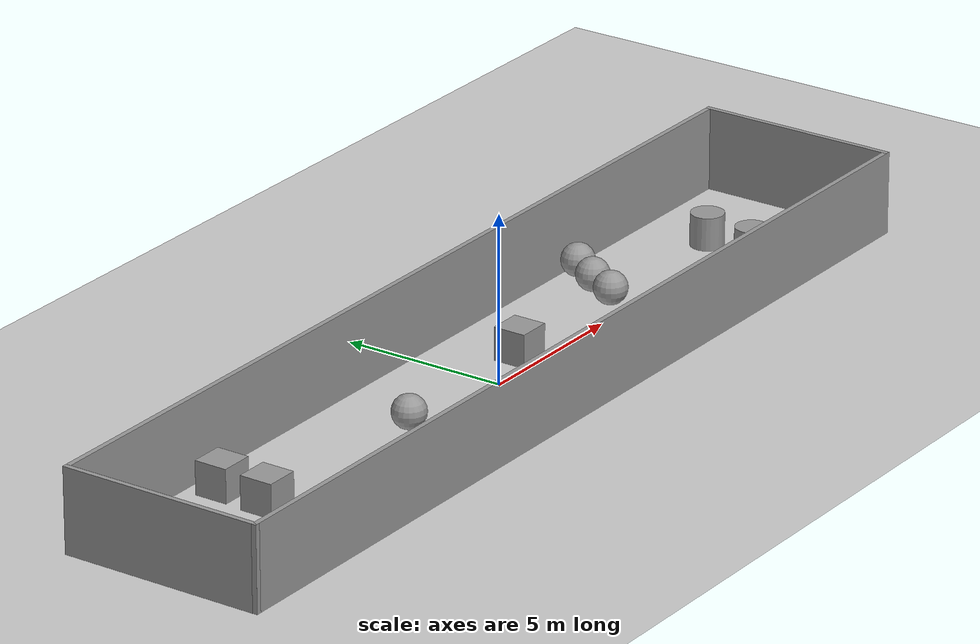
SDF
<sdf version="1.6">
 <world name="default">
  <light name="sun" type="directional">
   <pose>0 0 10 0 -0 0</pose>
   <diffuse>0.8 0.8 0.8 1</diffuse>
   <specular>0.2 0.2 0.2 1</specular>
   <attenuation>
    <range>1000</range>
    <constant>0.9</constant>
    <linear>0.01</linear>
    <quadratic>0.001</quadratic>
   </attenuation>
   <direction>-0.5 0.1 -0.9</direction>
  </light>
  <model name="ground_plane">
   <static>1</static>
   <link name="link">
    <collision name="collision">
     <geometry><plane><normal>0 0 1</normal><size>100 100</size></plane></geometry>
     <surface>
      <contact><collide_bitmask>65535</collide_bitmask></contact>
      <friction><ode><mu>100</mu><mu2>50</mu2></ode></friction>
     </surface>
    </collision>
    <visual name="visual">
     <cast_shadows>0</cast_shadows>
     <geometry><plane><normal>0 0 1</normal><size>100 100</size></plane></geometry>
     <material>
      <script><uri>file://media/materials/scripts/gazebo.material</uri><name>Gazebo/Grey</name></script>
     </material>
    </visual>
   </link>
  </model>
  <gravity>0 0 -9.8</gravity>
  <magnetic_field>6e-06 2.3e-05 -4.2e-05</magnetic_field>
  <atmosphere type="adiabatic"/>
  <physics name="default_physics" default="0" type="ode">
   <max_step_size>0.001</max_step_size>
   <real_time_factor>1</real_time_factor>
   <real_time_update_rate>1000</real_time_update_rate>
  </physics>
  <scene><ambient>0.4 0.4 0.4 1</ambient><background>0.7 0.7 0.7 1</background><shadows>1</shadows></scene>
  <audio><device>default</device></audio>
  <spherical_coordinates>
   <surface_model>EARTH_WGS84</surface_model>
   <latitude_deg>0</latitude_deg>
   <longitude_deg>0</longitude_deg>
   <elevation>0</elevation>
   <heading_deg>0</heading_deg>
  </spherical_coordinates>
  <model name="hallway.sdf">
   <link name="Wall_0">
    <collision name="Wall_0_Collision">
     <geometry><box><size>30.15 0.15 2.5</size></box></geometry>
     <pose>0 0 1.25 0 -0 0</pose>
    </collision>
    <visual name="Wall_0_Visual">
     <pose>0 0 1.25 0 -0 0</pose>
     <geometry><box><size>30.15 0.15 2.5</size></box></geometry>
     <material>
      <script><uri>file://media/materials/scripts/gazebo.material</uri><name>Gazebo/Grey</name></script>
      <ambient>1 1 1 1</ambient>
     </material>
     <meta><layer>0</layer></meta>
    </visual>
    <pose>0 3 0 0 -0 0</pose>
   </link>
   <link name="Wall_1">
    <collision name="Wall_1_Collision">
     <geometry><box><size>6.15 0.15 2.5</size></box></geometry>
     <pose>0 0 1.25 0 -0 0</pose>
    </collision>
    <visual name="Wall_1_Visual">
     <pose>0 0 1.25 0 -0 0</pose>
     <geometry><box><size>6.15 0.15 2.5</size></box></geometry>
     <material>
      <script><uri>file://media/materials/scripts/gazebo.material</uri><name>Gazebo/Grey</name></script>
      <ambient>1 1 1 1</ambient>
     </material>
     <meta><layer>0</layer></meta>
    </visual>
    <pose>15 0 0 0 -0 -1.5708</pose>
   </link>
   <link name="Wall_2">
    <collision name="Wall_2_Collision">
     <geometry><box><size>30.15 0.15 2.5</size></box></geometry>
     <pose>0 0 1.25 0 -0 0</pose>
    </collision>
    <visual name="Wall_2_Visual">
     <pose>0 0 1.25 0 -0 0</pose>
     <geometry><box><size>30.15 0.15 2.5</size></box></geometry>
     <material>
      <script><uri>file://media/materials/scripts/gazebo.material</uri><name>Gazebo/Grey</name></script>
      <ambient>1 1 1 1</ambient>
     </material>
     <meta><layer>0</layer></meta>
    </visual>
    <pose>0 -3 0 0 -0 3.14159</pose>
   </link>
   <link name="Wall_3">
    <collision name="Wall_3_Collision">
     <geometry><box><size>6.15 0.15 2.5</size></box></geometry>
     <pose>0 0 1.25 0 -0 0</pose>
    </collision>
    <visual name="Wall_3_Visual">
     <pose>0 0 1.25 0 -0 0</pose>
     <geometry><box><size>6.15 0.15 2.5</size></box></geometry>
     <material>
      <script><uri>file://media/materials/scripts/gazebo.material</uri><name>Gazebo/Grey</name></script>
      <ambient>1 1 1 1</ambient>
     </material>
     <meta><layer>0</layer></meta>
    </visual>
    <pose>-15 0 0 0 -0 1.5708</pose>
   </link>
   <static>1</static>
  </model>
  <model name="hall_obstacles.sdf">
   <link name="link_0">
    <inertial>
     <mass>2000</mass>
     <inertia><ixx>333.333</ixx><ixy>0</ixy><ixz>0</ixz><iyy>333.333</iyy><iyz>0</iyz><izz>333.333</izz></inertia>
    </inertial>
    <pose>-12.2076 1.1435 0 0 -0 0</pose>
    <visual name="visual">
     <geometry><box><size>1 1 1</size></box></geometry>
     <material>
      <lighting>1</lighting>
      <script><uri>file://media/materials/scripts/gazebo.material</uri><name>Gazebo/Grey</name></script>
      <shader type="vertex"><normal_map>__default__</normal_map></shader>
     </material>
    </visual>
    <collision name="collision">
     <geometry><box><size>1 1 1</size></box></geometry>
     <surface>
      <friction>
       <ode><mu>1</mu><mu2>1</mu2><fdir1>0 0 0</fdir1><slip1>0</slip1><slip2>0</slip2></ode>
       <torsional>
        <coefficient>1</coefficient>
        <patch_radius>0</patch_radius>
        <surface_radius>0</surface_radius>
        <use_patch_radius>1</use_patch_radius>
        <ode><slip>0</slip></ode>
       </torsional>
      </friction>
      <bounce><restitution_coefficient>0</restitution_coefficient><threshold>1e+06</threshold></bounce>
      <contact>
       <collide_without_contact>0</collide_without_contact>
       <collide_without_contact_bitmask>1</collide_without_contact_bitmask>
       <collide_bitmask>1</collide_bitmask>
       <ode>
        <soft_cfm>0</soft_cfm>
        <soft_erp>0.2</soft_erp>
        <kp>1e+13</kp>
        <kd>1</kd>
        <max_vel>0.01</max_vel>
        <min_depth>0</min_depth>
       </ode>
       <bullet>
        <split_impulse>1</split_impulse>
        <split_impulse_penetration_threshold>-0.01</split_impulse_penetration_threshold>
        <soft_cfm>0</soft_cfm>
        <soft_erp>0.2</soft_erp>
        <kp>1e+13</kp>
        <kd>1</kd>
       </bullet>
      </contact>
     </surface>
    </collision>
   </link>
   <link name="link_1">
    <inertial>
     <mass>2000</mass>
     <inertia><ixx>333.333</ixx><ixy>0</ixy><ixz>0</ixz><iyy>333.333</iyy><iyz>0</iyz><izz>333.333</izz></inertia>
    </inertial>
    <pose>-12.2761 -0.378192 0 0 -0 0</pose>
    <visual name="visual">
     <geometry><box><size>1 1 1</size></box></geometry>
     <material>
      <lighting>1</lighting>
      <script><uri>file://media/materials/scripts/gazebo.material</uri><name>Gazebo/Grey</name></script>
      <shader type="vertex"><normal_map>__default__</normal_map></shader>
     </material>
    </visual>
    <collision name="collision">
     <geometry><box><size>1 1 1</size></box></geometry>
     <surface>
      <friction>
       <ode><mu>1</mu><mu2>1</mu2><fdir1>0 0 0</fdir1><slip1>0</slip1><slip2>0</slip2></ode>
       <torsional>
        <coefficient>1</coefficient>
        <patch_radius>0</patch_radius>
        <surface_radius>0</surface_radius>
        <use_patch_radius>1</use_patch_radius>
        <ode><slip>0</slip></ode>
       </torsional>
      </friction>
      <bounce><restitution_coefficient>0</restitution_coefficient><threshold>1e+06</threshold></bounce>
      <contact>
       <collide_without_contact>0</collide_without_contact>
       <collide_without_contact_bitmask>1</collide_without_contact_bitmask>
       <collide_bitmask>1</collide_bitmask>
       <ode>
        <soft_cfm>0</soft_cfm>
        <soft_erp>0.2</soft_erp>
        <kp>1e+13</kp>
        <kd>1</kd>
        <max_vel>0.01</max_vel>
        <min_depth>0</min_depth>
       </ode>
       <bullet>
        <split_impulse>1</split_impulse>
        <split_impulse_penetration_threshold>-0.01</split_impulse_penetration_threshold>
        <soft_cfm>0</soft_cfm>
        <soft_erp>0.2</soft_erp>
        <kp>1e+13</kp>
        <kd>1</kd>
       </bullet>
      </contact>
     </surface>
    </collision>
   </link>
   <link name="link_2">
    <inertial>
     <mass>2000</mass>
     <inertia><ixx>333.333</ixx><ixy>0</ixy><ixz>0</ixz><iyy>333.333</iyy><iyz>0</iyz><izz>333.333</izz></inertia>
    </inertial>
    <pose>-0.635519 -0.315968 0 0 -0 0</pose>
    <visual name="visual">
     <geometry><box><size>1 1 1</size></box></geometry>
     <material>
      <lighting>1</lighting>
      <script><uri>file://media/materials/scripts/gazebo.material</uri><name>Gazebo/Grey</name></script>
      <shader type="vertex"><normal_map>__default__</normal_map></shader>
     </material>
    </visual>
    <collision name="collision">
     <geometry><box><size>1 1 1</size></box></geometry>
     <surface>
      <friction>
       <ode><mu>1</mu><mu2>1</mu2><fdir1>0 0 0</fdir1><slip1>0</slip1><slip2>0</slip2></ode>
       <torsional>
        <coefficient>1</coefficient>
        <patch_radius>0</patch_radius>
        <surface_radius>0</surface_radius>
        <use_patch_radius>1</use_patch_radius>
        <ode><slip>0</slip></ode>
       </torsional>
      </friction>
      <bounce><restitution_coefficient>0</restitution_coefficient><threshold>1e+06</threshold></bounce>
      <contact>
       <collide_without_contact>0</collide_without_contact>
       <collide_without_contact_bitmask>1</collide_without_contact_bitmask>
       <collide_bitmask>1</collide_bitmask>
       <ode>
        <soft_cfm>0</soft_cfm>
        <soft_erp>0.2</soft_erp>
        <kp>1e+13</kp>
        <kd>1</kd>
        <max_vel>0.01</max_vel>
        <min_depth>0</min_depth>
       </ode>
       <bullet>
        <split_impulse>1</split_impulse>
        <split_impulse_penetration_threshold>-0.01</split_impulse_penetration_threshold>
        <soft_cfm>0</soft_cfm>
        <soft_erp>0.2</soft_erp>
        <kp>1e+13</kp>
        <kd>1</kd>
       </bullet>
      </contact>
     </surface>
    </collision>
   </link>
   <link name="link_3">
    <inertial>
     <mass>1047.2</mass>
     <inertia><ixx>104.72</ixx><ixy>0</ixy><ixz>0</ixz><iyy>104.72</iyy><iyz>0</iyz><izz>104.72</izz></inertia>
    </inertial>
    <pose>-6.10882 -0.518584 0 0 -0 0</pose>
    <visual name="visual">
     <geometry><sphere><radius>0.5</radius></sphere></geometry>
     <material>
      <lighting>1</lighting>
      <script><uri>file://media/materials/scripts/gazebo.material</uri><name>Gazebo/Grey</name></script>
      <shader type="vertex"><normal_map>__default__</normal_map></shader>
     </material>
    </visual>
    <collision name="collision">
     <geometry><sphere><radius>0.5</radius></sphere></geometry>
     <surface>
      <friction>
       <ode><mu>1</mu><mu2>1</mu2><fdir1>0 0 0</fdir1><slip1>0</slip1><slip2>0</slip2></ode>
       <torsional>
        <coefficient>1</coefficient>
        <patch_radius>0</patch_radius>
        <surface_radius>0</surface_radius>
        <use_patch_radius>1</use_patch_radius>
        <ode><slip>0</slip></ode>
       </torsional>
      </friction>
      <bounce><restitution_coefficient>0</restitution_coefficient><threshold>1e+06</threshold></bounce>
      <contact>
       <collide_without_contact>0</collide_without_contact>
       <collide_without_contact_bitmask>1</collide_without_contact_bitmask>
       <collide_bitmask>1</collide_bitmask>
       <ode>
        <soft_cfm>0</soft_cfm>
        <soft_erp>0.2</soft_erp>
        <kp>1e+13</kp>
        <kd>1</kd>
        <max_vel>0.01</max_vel>
        <min_depth>0</min_depth>
       </ode>
       <bullet>
        <split_impulse>1</split_impulse>
        <split_impulse_penetration_threshold>-0.01</split_impulse_penetration_threshold>
        <soft_cfm>0</soft_cfm>
        <soft_erp>0.2</soft_erp>
        <kp>1e+13</kp>
        <kd>1</kd>
       </bullet>
      </contact>
     </surface>
    </collision>
   </link>
   <link name="link_4">
    <inertial>
     <mass>1047.2</mass>
     <inertia><ixx>104.72</ixx><ixy>0</ixy><ixz>0</ixz><iyy>104.72</iyy><iyz>0</iyz><izz>104.72</izz></inertia>
    </inertial>
    <pose>3.91188 -0.269261 0 0 -0 0</pose>
    <visual name="visual">
     <geometry><sphere><radius>0.5</radius></sphere></geometry>
     <material>
      <lighting>1</lighting>
      <script><uri>file://media/materials/scripts/gazebo.material</uri><name>Gazebo/Grey</name></script>
      <shader type="vertex"><normal_map>__default__</normal_map></shader>
     </material>
    </visual>
    <collision name="collision">
     <geometry><sphere><radius>0.5</radius></sphere></geometry>
     <surface>
      <friction>
       <ode><mu>1</mu><mu2>1</mu2><fdir1>0 0 0</fdir1><slip1>0</slip1><slip2>0</slip2></ode>
       <torsional>
        <coefficient>1</coefficient>
        <patch_radius>0</patch_radius>
        <surface_radius>0</surface_radius>
        <use_patch_radius>1</use_patch_radius>
        <ode><slip>0</slip></ode>
       </torsional>
      </friction>
      <bounce><restitution_coefficient>0</restitution_coefficient><threshold>1e+06</threshold></bounce>
      <contact>
       <collide_without_contact>0</collide_without_contact>
       <collide_without_contact_bitmask>1</collide_without_contact_bitmask>
       <collide_bitmask>1</collide_bitmask>
       <ode>
        <soft_cfm>0</soft_cfm>
        <soft_erp>0.2</soft_erp>
        <kp>1e+13</kp>
        <kd>1</kd>
        <max_vel>0.01</max_vel>
        <min_depth>0</min_depth>
       </ode>
       <bullet>
        <split_impulse>1</split_impulse>
        <split_impulse_penetration_threshold>-0.01</split_impulse_penetration_threshold>
        <soft_cfm>0</soft_cfm>
        <soft_erp>0.2</soft_erp>
        <kp>1e+13</kp>
        <kd>1</kd>
       </bullet>
      </contact>
     </surface>
    </collision>
   </link>
   <link name="link_5">
    <inertial>
     <mass>1047.2</mass>
     <inertia><ixx>104.72</ixx><ixy>0</ixy><ixz>0</ixz><iyy>104.72</iyy><iyz>0</iyz><izz>104.72</izz></inertia>
    </inertial>
    <pose>4.41614 0.674261 0 0 -0 0</pose>
    <visual name="visual">
     <geometry><sphere><radius>0.5</radius></sphere></geometry>
     <material>
      <lighting>1</lighting>
      <script><uri>file://media/materials/scripts/gazebo.material</uri><name>Gazebo/Grey</name></script>
      <shader type="vertex"><normal_map>__default__</normal_map></shader>
     </material>
    </visual>
    <collision name="collision">
     <geometry><sphere><radius>0.5</radius></sphere></geometry>
     <surface>
      <friction>
       <ode><mu>1</mu><mu2>1</mu2><fdir1>0 0 0</fdir1><slip1>0</slip1><slip2>0</slip2></ode>
       <torsional>
        <coefficient>1</coefficient>
        <patch_radius>0</patch_radius>
        <surface_radius>0</surface_radius>
        <use_patch_radius>1</use_patch_radius>
        <ode><slip>0</slip></ode>
       </torsional>
      </friction>
      <bounce><restitution_coefficient>0</restitution_coefficient><threshold>1e+06</threshold></bounce>
      <contact>
       <collide_without_contact>0</collide_without_contact>
       <collide_without_contact_bitmask>1</collide_without_contact_bitmask>
       <collide_bitmask>1</collide_bitmask>
       <ode>
        <soft_cfm>0</soft_cfm>
        <soft_erp>0.2</soft_erp>
        <kp>1e+13</kp>
        <kd>1</kd>
        <max_vel>0.01</max_vel>
        <min_depth>0</min_depth>
       </ode>
       <bullet>
        <split_impulse>1</split_impulse>
        <split_impulse_penetration_threshold>-0.01</split_impulse_penetration_threshold>
        <soft_cfm>0</soft_cfm>
        <soft_erp>0.2</soft_erp>
        <kp>1e+13</kp>
        <kd>1</kd>
       </bullet>
      </contact>
     </surface>
    </collision>
   </link>
   <link name="link_6">
    <inertial>
     <mass>1047.2</mass>
     <inertia><ixx>104.72</ixx><ixy>0</ixy><ixz>0</ixz><iyy>104.72</iyy><iyz>0</iyz><izz>104.72</izz></inertia>
    </inertial>
    <pose>5.03883 1.5954 0 0 -0 0</pose>
    <visual name="visual">
     <geometry><sphere><radius>0.5</radius></sphere></geometry>
     <material>
      <lighting>1</lighting>
      <script><uri>file://media/materials/scripts/gazebo.material</uri><name>Gazebo/Grey</name></script>
      <shader type="vertex"><normal_map>__default__</normal_map></shader>
     </material>
    </visual>
    <collision name="collision">
     <geometry><sphere><radius>0.5</radius></sphere></geometry>
     <surface>
      <friction>
       <ode><mu>1</mu><mu2>1</mu2><fdir1>0 0 0</fdir1><slip1>0</slip1><slip2>0</slip2></ode>
       <torsional>
        <coefficient>1</coefficient>
        <patch_radius>0</patch_radius>
        <surface_radius>0</surface_radius>
        <use_patch_radius>1</use_patch_radius>
        <ode><slip>0</slip></ode>
       </torsional>
      </friction>
      <bounce><restitution_coefficient>0</restitution_coefficient><threshold>1e+06</threshold></bounce>
      <contact>
       <collide_without_contact>0</collide_without_contact>
       <collide_without_contact_bitmask>1</collide_without_contact_bitmask>
       <collide_bitmask>1</collide_bitmask>
       <ode>
        <soft_cfm>0</soft_cfm>
        <soft_erp>0.2</soft_erp>
        <kp>1e+13</kp>
        <kd>1</kd>
        <max_vel>0.01</max_vel>
        <min_depth>0</min_depth>
       </ode>
       <bullet>
        <split_impulse>1</split_impulse>
        <split_impulse_penetration_threshold>-0.01</split_impulse_penetration_threshold>
        <soft_cfm>0</soft_cfm>
        <soft_erp>0.2</soft_erp>
        <kp>1e+13</kp>
        <kd>1</kd>
       </bullet>
      </contact>
     </surface>
    </collision>
   </link>
   <link name="link_7">
    <inertial>
     <mass>1570.8</mass>
     <inertia><ixx>229.074</ixx><ixy>0</ixy><ixz>0</ixz><iyy>229.074</iyy><iyz>0</iyz><izz>196.35</izz></inertia>
    </inertial>
    <pose>8.85175 -1.76844 0 0 -0 0</pose>
    <visual name="visual">
     <geometry><cylinder><radius>0.5</radius><length>1</length></cylinder></geometry>
     <material>
      <lighting>1</lighting>
      <script><uri>file://media/materials/scripts/gazebo.material</uri><name>Gazebo/Grey</name></script>
      <shader type="vertex"><normal_map>__default__</normal_map></shader>
     </material>
    </visual>
    <collision name="collision">
     <geometry><cylinder><radius>0.5</radius><length>1</length></cylinder></geometry>
     <surface>
      <friction>
       <ode><mu>1</mu><mu2>1</mu2><fdir1>0 0 0</fdir1><slip1>0</slip1><slip2>0</slip2></ode>
       <torsional>
        <coefficient>1</coefficient>
        <patch_radius>0</patch_radius>
        <surface_radius>0</surface_radius>
        <use_patch_radius>1</use_patch_radius>
        <ode><slip>0</slip></ode>
       </torsional>
      </friction>
      <bounce><restitution_coefficient>0</restitution_coefficient><threshold>1e+06</threshold></bounce>
      <contact>
       <collide_without_contact>0</collide_without_contact>
       <collide_without_contact_bitmask>1</collide_without_contact_bitmask>
       <collide_bitmask>1</collide_bitmask>
       <ode>
        <soft_cfm>0</soft_cfm>
        <soft_erp>0.2</soft_erp>
        <kp>1e+13</kp>
        <kd>1</kd>
        <max_vel>0.01</max_vel>
        <min_depth>0</min_depth>
       </ode>
       <bullet>
        <split_impulse>1</split_impulse>
        <split_impulse_penetration_threshold>-0.01</split_impulse_penetration_threshold>
        <soft_cfm>0</soft_cfm>
        <soft_erp>0.2</soft_erp>
        <kp>1e+13</kp>
        <kd>1</kd>
       </bullet>
      </contact>
     </surface>
    </collision>
   </link>
   <link name="link_8">
    <inertial>
     <mass>1570.8</mass>
     <inertia><ixx>229.074</ixx><ixy>0</ixy><ixz>0</ixz><iyy>229.074</iyy><iyz>0</iyz><izz>196.35</izz></inertia>
    </inertial>
    <pose>9.00945 -0.162724 0 0 -0 0</pose>
    <visual name="visual">
     <geometry><cylinder><radius>0.5</radius><length>1</length></cylinder></geometry>
     <material>
      <lighting>1</lighting>
      <script><uri>file://media/materials/scripts/gazebo.material</uri><name>Gazebo/Grey</name></script>
      <shader type="vertex"><normal_map>__default__</normal_map></shader>
     </material>
    </visual>
    <collision name="collision">
     <geometry><cylinder><radius>0.5</radius><length>1</length></cylinder></geometry>
     <surface>
      <friction>
       <ode><mu>1</mu><mu2>1</mu2><fdir1>0 0 0</fdir1><slip1>0</slip1><slip2>0</slip2></ode>
       <torsional>
        <coefficient>1</coefficient>
        <patch_radius>0</patch_radius>
        <surface_radius>0</surface_radius>
        <use_patch_radius>1</use_patch_radius>
        <ode><slip>0</slip></ode>
       </torsional>
      </friction>
      <bounce><restitution_coefficient>0</restitution_coefficient><threshold>1e+06</threshold></bounce>
      <contact>
       <collide_without_contact>0</collide_without_contact>
       <collide_without_contact_bitmask>1</collide_without_contact_bitmask>
       <collide_bitmask>1</collide_bitmask>
       <ode>
        <soft_cfm>0</soft_cfm>
        <soft_erp>0.2</soft_erp>
        <kp>1e+13</kp>
        <kd>1</kd>
        <max_vel>0.01</max_vel>
        <min_depth>0</min_depth>
       </ode>
       <bullet>
        <split_impulse>1</split_impulse>
        <split_impulse_penetration_threshold>-0.01</split_impulse_penetration_threshold>
        <soft_cfm>0</soft_cfm>
        <soft_erp>0.2</soft_erp>
        <kp>1e+13</kp>
        <kd>1</kd>
       </bullet>
      </contact>
     </surface>
    </collision>
   </link>
   <static>0</static>
   <pose>2.40155 0.858709 0.5 0 -0 0</pose>
  </model>
 </world>
</sdf>
